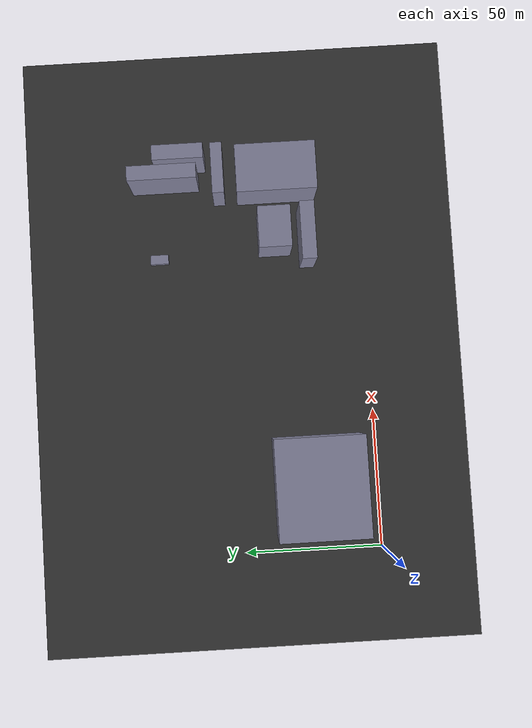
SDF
<?xml version="1.0" ?>
<sdf version="1.6">
  <world name="iau_campus_world">
    <include>
      <uri>model://sun</uri>
    </include>
    <model name="Geniş_Taban_Zemini">
      <static>true</static>
      <pose>77.25 45.35 -0.1 0 0 0</pose>
      <link name="link">
        <visual name="visual">
          <geometry>
            <box>
              <size>223.10000000000002 159.10000000000002 0.2</size>
            </box>
          </geometry>
          <material>
            <ambient>0.2 0.2 0.2 1</ambient>
            <diffuse>0.2 0.2 0.2 1</diffuse>
          </material>
        </visual>
        <collision name="collision">
          <geometry>
            <box>
              <size>223.10000000000002 159.10000000000002 0.2</size>
            </box>
          </geometry>
        </collision>
      </link>
    </model>
    <model name="T_Blok">
      <static>true</static>
      <pose>23.750000000000004 22.050000000000004 11.25 0 0 0</pose>
      <link name="link">
        <visual name="visual">
          <geometry>
            <box>
              <size>36.1 32.5 22.5</size>
            </box>
          </geometry>
          <material>
            <ambient>0.5 0.5 0.6 1</ambient>
            <diffuse>0.5 0.5 0.6 1</diffuse>
          </material>
        </visual>
        <collision name="collision">
          <geometry>
            <box>
              <size>36.1 32.5 22.5</size>
            </box>
          </geometry>
        </collision>
      </link>
    </model>
    <model name="DısCoffe">
      <static>true</static>
      <pose>110.60000000000001 76.25 1.25 0 0 0</pose>
      <link name="link">
        <visual name="visual">
          <geometry>
            <box>
              <size>3.4000000000000057 6.700000000000003 2.5</size>
            </box>
          </geometry>
          <material>
            <ambient>0.5 0.5 0.6 1</ambient>
            <diffuse>0.5 0.5 0.6 1</diffuse>
          </material>
        </visual>
        <collision name="collision">
          <geometry>
            <box>
              <size>3.4000000000000057 6.700000000000003 2.5</size>
            </box>
          </geometry>
        </collision>
      </link>
    </model>
    <model name="E_Blok">
      <static>true</static>
      <pose>117.15 33.2 10.75 0 0 0</pose>
      <link name="link">
        <visual name="visual">
          <geometry>
            <box>
              <size>14.900000000000006 11.8 21.5</size>
            </box>
          </geometry>
          <material>
            <ambient>0.5 0.5 0.6 1</ambient>
            <diffuse>0.5 0.5 0.6 1</diffuse>
          </material>
        </visual>
        <collision name="collision">
          <geometry>
            <box>
              <size>14.900000000000006 11.8 21.5</size>
            </box>
          </geometry>
        </collision>
      </link>
    </model>
    <model name="A_Blok">
      <static>true</static>
      <pose>138.75 72.5 11.25 0 0 0</pose>
      <link name="link">
        <visual name="visual">
          <geometry>
            <box>
              <size>5.300000000000011 24.800000000000004 22.5</size>
            </box>
          </geometry>
          <material>
            <ambient>0.5 0.5 0.6 1</ambient>
            <diffuse>0.5 0.5 0.6 1</diffuse>
          </material>
        </visual>
        <collision name="collision">
          <geometry>
            <box>
              <size>5.300000000000011 24.800000000000004 22.5</size>
            </box>
          </geometry>
        </collision>
      </link>
    </model>
    <model name="N_Blok">
      <static>true</static>
      <pose>146.10000000000002 66.5 10.75 0 0 0</pose>
      <link name="link">
        <visual name="visual">
          <geometry>
            <box>
              <size>5.400000000000006 18.4 21.5</size>
            </box>
          </geometry>
          <material>
            <ambient>0.5 0.5 0.6 1</ambient>
            <diffuse>0.5 0.5 0.6 1</diffuse>
          </material>
        </visual>
        <collision name="collision">
          <geometry>
            <box>
              <size>5.400000000000006 18.4 21.5</size>
            </box>
          </geometry>
        </collision>
      </link>
    </model>
    <model name="J_Blok">
      <static>true</static>
      <pose>139.45 52.6 10.75 0 0 0</pose>
      <link name="link">
        <visual name="visual">
          <geometry>
            <box>
              <size>18.299999999999983 4.200000000000003 21.5</size>
            </box>
          </geometry>
          <material>
            <ambient>0.5 0.5 0.6 1</ambient>
            <diffuse>0.5 0.5 0.6 1</diffuse>
          </material>
        </visual>
        <collision name="collision">
          <geometry>
            <box>
              <size>18.299999999999983 4.200000000000003 21.5</size>
            </box>
          </geometry>
        </collision>
      </link>
    </model>
    <model name="D_Blok">
      <static>true</static>
      <pose>138.75 31.55 10.75 0 0 0</pose>
      <link name="link">
        <visual name="visual">
          <geometry>
            <box>
              <size>17.30000000000001 28.9 21.5</size>
            </box>
          </geometry>
          <material>
            <ambient>0.5 0.5 0.6 1</ambient>
            <diffuse>0.5 0.5 0.6 1</diffuse>
          </material>
        </visual>
        <collision name="collision">
          <geometry>
            <box>
              <size>17.30000000000001 28.9 21.5</size>
            </box>
          </geometry>
        </collision>
      </link>
    </model>
    <model name="F_Blok">
      <static>true</static>
      <pose>115.20000000000002 21.35 10.75 0 0 0</pose>
      <link name="link">
        <visual name="visual">
          <geometry>
            <box>
              <size>20.799999999999997 5.300000000000001 21.5</size>
            </box>
          </geometry>
          <material>
            <ambient>0.5 0.5 0.6 1</ambient>
            <diffuse>0.5 0.5 0.6 1</diffuse>
          </material>
        </visual>
        <collision name="collision">
          <geometry>
            <box>
              <size>20.799999999999997 5.300000000000001 21.5</size>
            </box>
          </geometry>
        </collision>
      </link>
    </model>
  </world>
</sdf>
